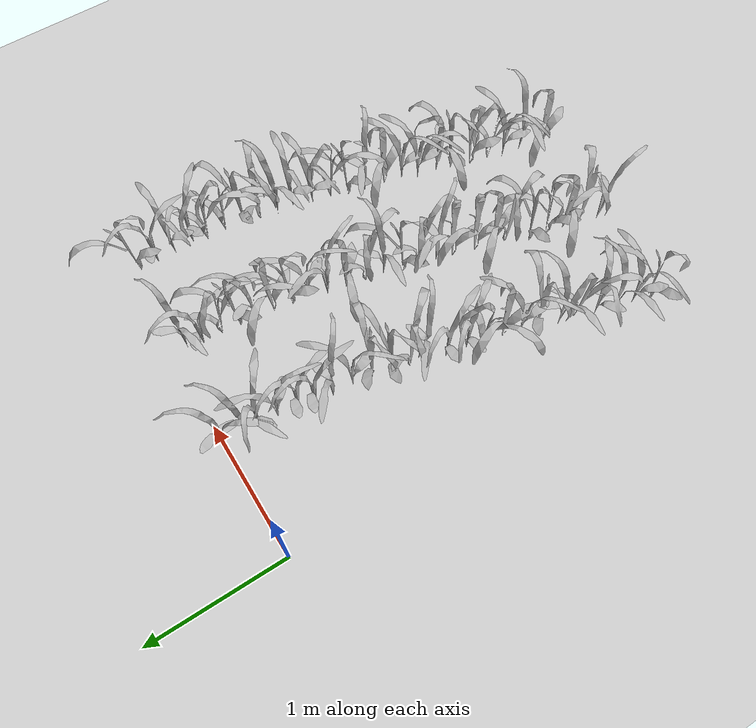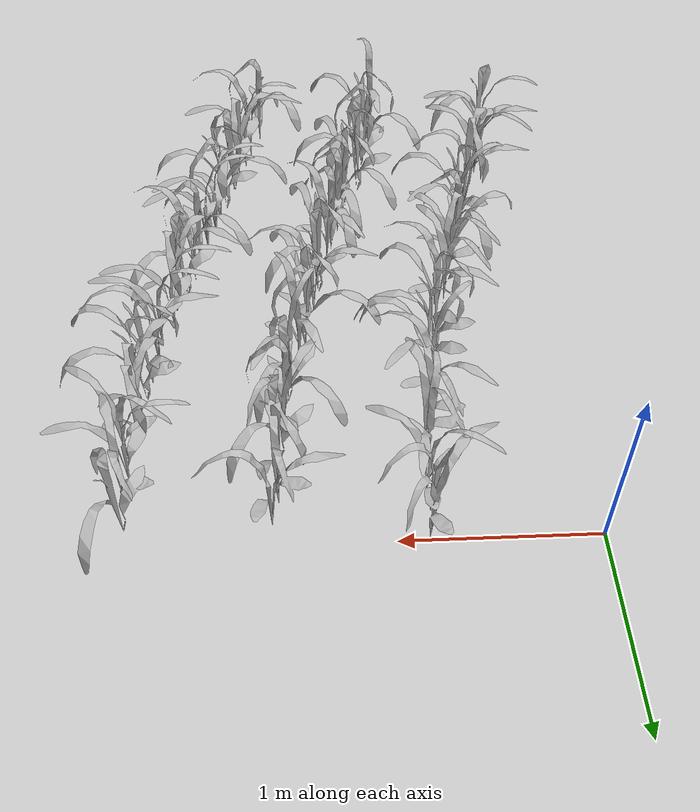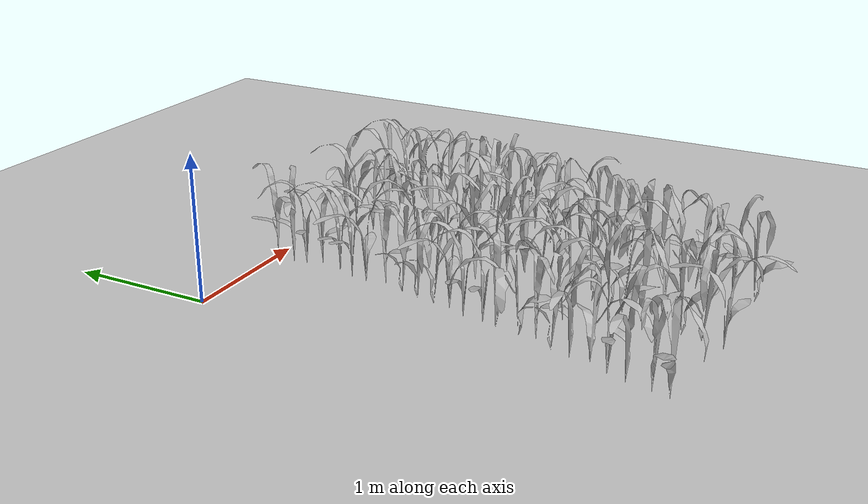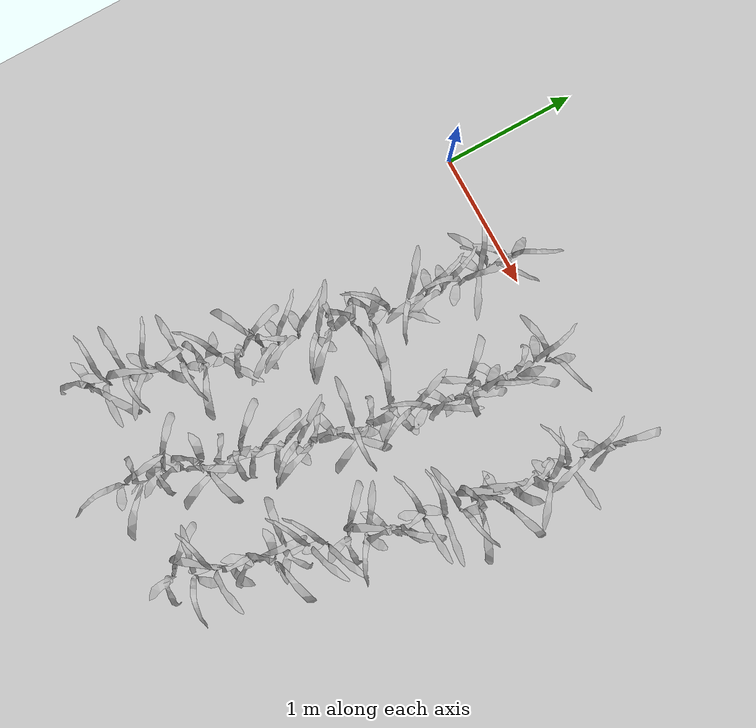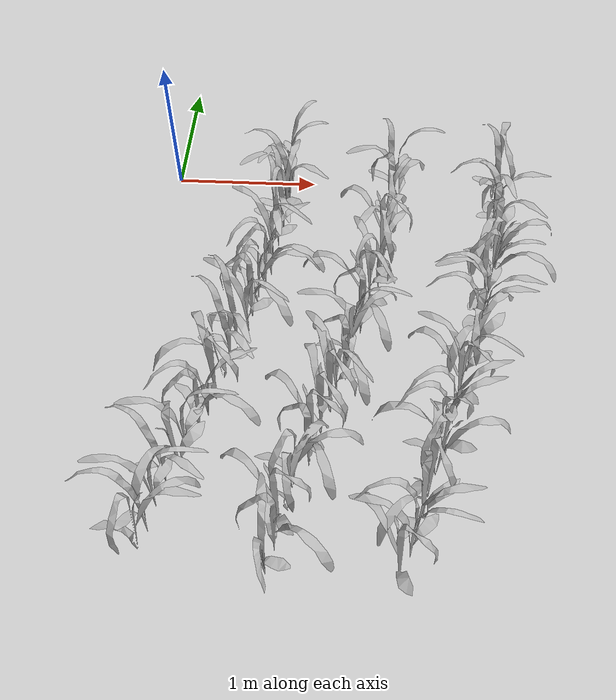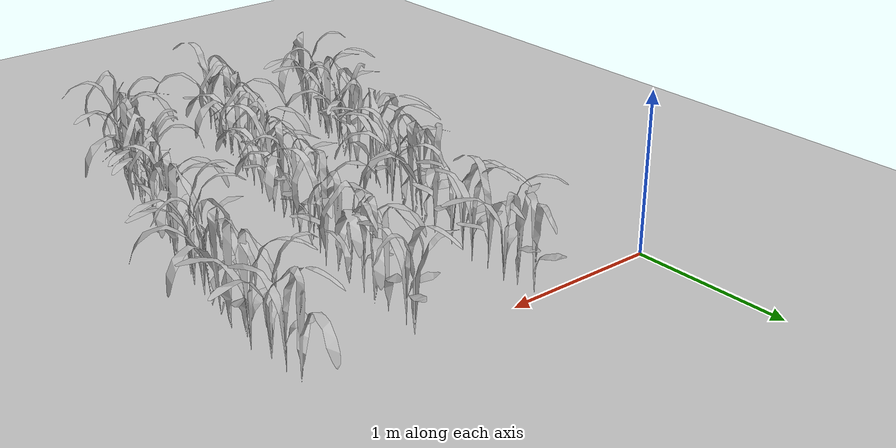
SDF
<sdf version="1.7">
 <world name="default">
  <model name="maize_01_0415">
   <pose>0.221696 -3.00469 1e-06 0.000116 2e-06 1.37368</pose>
   <link name="maize_01_link">
    <inertial>
     <pose>0 0 0.01 0 -0 0</pose>
     <mass>0.3</mass>
     <inertia>
      <ixx>0.00334167</ixx>
      <ixy>0</ixy>
      <ixz>0</ixz>
      <iyy>0.00334167</iyy>
      <iyz>0</iyz>
      <izz>1.66667e-05</izz>
     </inertia>
     <pose>0 0 0.1 0 -0 0</pose>
    </inertial>
    <visual name="visual">
     <geometry>
      <mesh><uri>model://maize_01/meshes/maize_01.dae</uri><scale>0.683166 0.683166 0.683166</scale></mesh>
     </geometry>
    </visual>
   </link>
   <static>0</static>
  </model>
  <model name="maize_02_0416">
   <pose>0.255041 -2.89124 -1e-06 6e-06 -8.9e-05 2.12749</pose>
   <link name="maize_02_link">
    <inertial>
     <pose>0 0 0.01 0 -0 0</pose>
     <mass>0.3</mass>
     <inertia>
      <ixx>0.00334167</ixx>
      <ixy>0</ixy>
      <ixz>0</ixz>
      <iyy>0.00334167</iyy>
      <iyz>0</iyz>
      <izz>1.66667e-05</izz>
     </inertia>
     <pose>0 0 0.1 0 -0 0</pose>
    </inertial>
    <visual name="visual">
     <geometry>
      <mesh><uri>model://maize_02/meshes/maize_02.dae</uri><scale>0.683166 0.683166 0.683166</scale></mesh>
     </geometry>
    </visual>
   </link>
   <static>0</static>
  </model>
  <model name="maize_02_0417">
   <pose>0.274082 -2.73259 -0 -5e-06 2.8e-05 -0.94294</pose>
   <link name="maize_02_link">
    <inertial>
     <pose>0 0 0.01 0 -0 0</pose>
     <mass>0.3</mass>
     <inertia>
      <ixx>0.00334167</ixx>
      <ixy>0</ixy>
      <ixz>0</ixz>
      <iyy>0.00334167</iyy>
      <iyz>0</iyz>
      <izz>1.66667e-05</izz>
     </inertia>
     <pose>0 0 0.1 0 -0 0</pose>
    </inertial>
    <visual name="visual">
     <geometry>
      <mesh><uri>model://maize_02/meshes/maize_02.dae</uri><scale>0.683166 0.683166 0.683166</scale></mesh>
     </geometry>
    </visual>
   </link>
   <static>0</static>
  </model>
  <model name="maize_02_0418">
   <pose>0.318698 -2.61053 -1e-06 -8.6e-05 -6e-06 1.57221</pose>
   <link name="maize_02_link">
    <inertial>
     <pose>0 0 0.01 0 -0 0</pose>
     <mass>0.3</mass>
     <inertia>
      <ixx>0.00334167</ixx>
      <ixy>0</ixy>
      <ixz>0</ixz>
      <iyy>0.00334167</iyy>
      <iyz>0</iyz>
      <izz>1.66667e-05</izz>
     </inertia>
     <pose>0 0 0.1 0 -0 0</pose>
    </inertial>
    <visual name="visual">
     <geometry>
      <mesh><uri>model://maize_02/meshes/maize_02.dae</uri><scale>0.683166 0.683166 0.683166</scale></mesh>
     </geometry>
    </visual>
   </link>
   <static>0</static>
  </model>
  <model name="maize_01_0419">
   <pose>0.381773 -2.484 1e-06 3e-06 0.000156 -1.14904</pose>
   <link name="maize_01_link">
    <inertial>
     <pose>0 0 0.01 0 -0 0</pose>
     <mass>0.3</mass>
     <inertia>
      <ixx>0.00334167</ixx>
      <ixy>0</ixy>
      <ixz>0</ixz>
      <iyy>0.00334167</iyy>
      <iyz>0</iyz>
      <izz>1.66667e-05</izz>
     </inertia>
     <pose>0 0 0.1 0 -0 0</pose>
    </inertial>
    <visual name="visual">
     <geometry>
      <mesh><uri>model://maize_01/meshes/maize_01.dae</uri><scale>0.683166 0.683166 0.683166</scale></mesh>
     </geometry>
    </visual>
   </link>
   <static>0</static>
  </model>
  <model name="maize_02_0420">
   <pose>0.393863 -2.35343 -0 -5e-06 -2.8e-05 -0.946602</pose>
   <link name="maize_02_link">
    <inertial>
     <pose>0 0 0.01 0 -0 0</pose>
     <mass>0.3</mass>
     <inertia>
      <ixx>0.00334167</ixx>
      <ixy>0</ixy>
      <ixz>0</ixz>
      <iyy>0.00334167</iyy>
      <iyz>0</iyz>
      <izz>1.66667e-05</izz>
     </inertia>
     <pose>0 0 0.1 0 -0 0</pose>
    </inertial>
    <visual name="visual">
     <geometry>
      <mesh><uri>model://maize_02/meshes/maize_02.dae</uri><scale>0.683166 0.683166 0.683166</scale></mesh>
     </geometry>
    </visual>
   </link>
   <static>0</static>
  </model>
  <model name="maize_01_0421">
   <pose>0.45538 -2.21931 -0 5e-06 2.8e-05 0.438065</pose>
   <link name="maize_01_link">
    <inertial>
     <pose>0 0 0.01 0 -0 0</pose>
     <mass>0.3</mass>
     <inertia>
      <ixx>0.00334167</ixx>
      <ixy>0</ixy>
      <ixz>0</ixz>
      <iyy>0.00334167</iyy>
      <iyz>0</iyz>
      <izz>1.66667e-05</izz>
     </inertia>
     <pose>0 0 0.1 0 -0 0</pose>
    </inertial>
    <visual name="visual">
     <geometry>
      <mesh><uri>model://maize_01/meshes/maize_01.dae</uri><scale>0.683166 0.683166 0.683166</scale></mesh>
     </geometry>
    </visual>
   </link>
   <static>0</static>
  </model>
  <model name="maize_02_0422">
   <pose>0.492206 -2.10585 -0 -2.8e-05 -5e-06 2.71184</pose>
   <link name="maize_02_link">
    <inertial>
     <pose>0 0 0.01 0 -0 0</pose>
     <mass>0.3</mass>
     <inertia>
      <ixx>0.00334167</ixx>
      <ixy>0</ixy>
      <ixz>0</ixz>
      <iyy>0.00334167</iyy>
      <iyz>0</iyz>
      <izz>1.66667e-05</izz>
     </inertia>
     <pose>0 0 0.1 0 -0 0</pose>
    </inertial>
    <visual name="visual">
     <geometry>
      <mesh><uri>model://maize_02/meshes/maize_02.dae</uri><scale>0.683166 0.683166 0.683166</scale></mesh>
     </geometry>
    </visual>
   </link>
   <static>0</static>
  </model>
  <model name="maize_01_0423">
   <pose>0.527457 -1.97814 1e-06 3e-06 -0.000156 2.74436</pose>
   <link name="maize_01_link">
    <inertial>
     <pose>0 0 0.01 0 -0 0</pose>
     <mass>0.3</mass>
     <inertia>
      <ixx>0.00334167</ixx>
      <ixy>0</ixy>
      <ixz>0</ixz>
      <iyy>0.00334167</iyy>
      <iyz>0</iyz>
      <izz>1.66667e-05</izz>
     </inertia>
     <pose>0 0 0.1 0 -0 0</pose>
    </inertial>
    <visual name="visual">
     <geometry>
      <mesh><uri>model://maize_01/meshes/maize_01.dae</uri><scale>0.683166 0.683166 0.683166</scale></mesh>
     </geometry>
    </visual>
   </link>
   <static>0</static>
  </model>
  <model name="maize_01_0424">
   <pose>0.546104 -1.8151 1e-06 -3e-06 -0.000156 -1.86587</pose>
   <link name="maize_01_link">
    <inertial>
     <pose>0 0 0.01 0 -0 0</pose>
     <mass>0.3</mass>
     <inertia>
      <ixx>0.00334167</ixx>
      <ixy>0</ixy>
      <ixz>0</ixz>
      <iyy>0.00334167</iyy>
      <iyz>0</iyz>
      <izz>1.66667e-05</izz>
     </inertia>
     <pose>0 0 0.1 0 -0 0</pose>
    </inertial>
    <visual name="visual">
     <geometry>
      <mesh><uri>model://maize_01/meshes/maize_01.dae</uri><scale>0.683166 0.683166 0.683166</scale></mesh>
     </geometry>
    </visual>
   </link>
   <static>0</static>
  </model>
  <model name="maize_02_0425">
   <pose>0.579997 -1.71609 -0 -2.8e-05 -5e-06 1.23075</pose>
   <link name="maize_02_link">
    <inertial>
     <pose>0 0 0.01 0 -0 0</pose>
     <mass>0.3</mass>
     <inertia>
      <ixx>0.00334167</ixx>
      <ixy>0</ixy>
      <ixz>0</ixz>
      <iyy>0.00334167</iyy>
      <iyz>0</iyz>
      <izz>1.66667e-05</izz>
     </inertia>
     <pose>0 0 0.1 0 -0 0</pose>
    </inertial>
    <visual name="visual">
     <geometry>
      <mesh><uri>model://maize_02/meshes/maize_02.dae</uri><scale>0.683166 0.683166 0.683166</scale></mesh>
     </geometry>
    </visual>
   </link>
   <static>0</static>
  </model>
  <model name="maize_02_0426">
   <pose>0.605497 -1.56964 -0 2.8e-05 -5e-06 1.04587</pose>
   <link name="maize_02_link">
    <inertial>
     <pose>0 0 0.01 0 -0 0</pose>
     <mass>0.3</mass>
     <inertia>
      <ixx>0.00334167</ixx>
      <ixy>0</ixy>
      <ixz>0</ixz>
      <iyy>0.00334167</iyy>
      <iyz>0</iyz>
      <izz>1.66667e-05</izz>
     </inertia>
     <pose>0 0 0.1 0 -0 0</pose>
    </inertial>
    <visual name="visual">
     <geometry>
      <mesh><uri>model://maize_02/meshes/maize_02.dae</uri><scale>0.683166 0.683166 0.683166</scale></mesh>
     </geometry>
    </visual>
   </link>
   <static>0</static>
  </model>
  <model name="maize_02_0427">
   <pose>0.667023 -1.44245 -1e-06 -8.3e-05 6e-06 -1.61009</pose>
   <link name="maize_02_link">
    <inertial>
     <pose>0 0 0.01 0 -0 0</pose>
     <mass>0.3</mass>
     <inertia>
      <ixx>0.00334167</ixx>
      <ixy>0</ixy>
      <ixz>0</ixz>
      <iyy>0.00334167</iyy>
      <iyz>0</iyz>
      <izz>1.66667e-05</izz>
     </inertia>
     <pose>0 0 0.1 0 -0 0</pose>
    </inertial>
    <visual name="visual">
     <geometry>
      <mesh><uri>model://maize_02/meshes/maize_02.dae</uri><scale>0.683166 0.683166 0.683166</scale></mesh>
     </geometry>
    </visual>
   </link>
   <static>0</static>
  </model>
  <model name="maize_01_0428">
   <pose>0.676519 -1.3275 -0 2.8e-05 5e-06 -0.012096</pose>
   <link name="maize_01_link">
    <inertial>
     <pose>0 0 0.01 0 -0 0</pose>
     <mass>0.3</mass>
     <inertia>
      <ixx>0.00334167</ixx>
      <ixy>0</ixy>
      <ixz>0</ixz>
      <iyy>0.00334167</iyy>
      <iyz>0</iyz>
      <izz>1.66667e-05</izz>
     </inertia>
     <pose>0 0 0.1 0 -0 0</pose>
    </inertial>
    <visual name="visual">
     <geometry>
      <mesh><uri>model://maize_01/meshes/maize_01.dae</uri><scale>0.683166 0.683166 0.683166</scale></mesh>
     </geometry>
    </visual>
   </link>
   <static>0</static>
  </model>
  <model name="maize_01_0429">
   <pose>0.703089 -1.19765 1e-06 -3e-06 0.000156 0.900305</pose>
   <link name="maize_01_link">
    <inertial>
     <pose>0 0 0.01 0 -0 0</pose>
     <mass>0.3</mass>
     <inertia>
      <ixx>0.00334167</ixx>
      <ixy>0</ixy>
      <ixz>0</ixz>
      <iyy>0.00334167</iyy>
      <iyz>0</iyz>
      <izz>1.66667e-05</izz>
     </inertia>
     <pose>0 0 0.1 0 -0 0</pose>
    </inertial>
    <visual name="visual">
     <geometry>
      <mesh><uri>model://maize_01/meshes/maize_01.dae</uri><scale>0.683166 0.683166 0.683166</scale></mesh>
     </geometry>
    </visual>
   </link>
   <static>0</static>
  </model>
  <model name="maize_01_0430">
   <pose>0.739331 -1.06498 1e-06 -3e-06 0.000156 0.541217</pose>
   <link name="maize_01_link">
    <inertial>
     <pose>0 0 0.01 0 -0 0</pose>
     <mass>0.3</mass>
     <inertia>
      <ixx>0.00334167</ixx>
      <ixy>0</ixy>
      <ixz>0</ixz>
      <iyy>0.00334167</iyy>
      <iyz>0</iyz>
      <izz>1.66667e-05</izz>
     </inertia>
     <pose>0 0 0.1 0 -0 0</pose>
    </inertial>
    <visual name="visual">
     <geometry>
      <mesh><uri>model://maize_01/meshes/maize_01.dae</uri><scale>0.683166 0.683166 0.683166</scale></mesh>
     </geometry>
    </visual>
   </link>
   <static>0</static>
  </model>
  <model name="maize_02_0431">
   <pose>0.765207 -0.926051 1e-06 0.000156 3e-06 2.942</pose>
   <link name="maize_02_link">
    <inertial>
     <pose>0 0 0.01 0 -0 0</pose>
     <mass>0.3</mass>
     <inertia>
      <ixx>0.00334167</ixx>
      <ixy>0</ixy>
      <ixz>0</ixz>
      <iyy>0.00334167</iyy>
      <iyz>0</iyz>
      <izz>1.66667e-05</izz>
     </inertia>
     <pose>0 0 0.1 0 -0 0</pose>
    </inertial>
    <visual name="visual">
     <geometry>
      <mesh><uri>model://maize_02/meshes/maize_02.dae</uri><scale>0.683166 0.683166 0.683166</scale></mesh>
     </geometry>
    </visual>
   </link>
   <static>0</static>
  </model>
  <model name="maize_02_0432">
   <pose>0.764271 -0.773912 -0 -2.8e-05 -5e-06 -1.63084</pose>
   <link name="maize_02_link">
    <inertial>
     <pose>0 0 0.01 0 -0 0</pose>
     <mass>0.3</mass>
     <inertia>
      <ixx>0.00334167</ixx>
      <ixy>0</ixy>
      <ixz>0</ixz>
      <iyy>0.00334167</iyy>
      <iyz>0</iyz>
      <izz>1.66667e-05</izz>
     </inertia>
     <pose>0 0 0.1 0 -0 0</pose>
    </inertial>
    <visual name="visual">
     <geometry>
      <mesh><uri>model://maize_02/meshes/maize_02.dae</uri><scale>0.683166 0.683166 0.683166</scale></mesh>
     </geometry>
    </visual>
   </link>
   <static>0</static>
  </model>
  <model name="maize_02_0433">
   <pose>0.789022 -0.651392 -0.000245 -1.4e-05 1.2e-05 0.79375</pose>
   <link name="maize_02_link">
    <inertial>
     <pose>0 0 0.01 0 -0 0</pose>
     <mass>0.3</mass>
     <inertia>
      <ixx>0.00334167</ixx>
      <ixy>0</ixy>
      <ixz>0</ixz>
      <iyy>0.00334167</iyy>
      <iyz>0</iyz>
      <izz>1.66667e-05</izz>
     </inertia>
     <pose>0 0 0.1 0 -0 0</pose>
    </inertial>
    <visual name="visual">
     <geometry>
      <mesh><uri>model://maize_02/meshes/maize_02.dae</uri><scale>0.683166 0.683166 0.683166</scale></mesh>
     </geometry>
    </visual>
   </link>
   <static>0</static>
  </model>
  <model name="maize_02_0434">
   <pose>0.816385 -0.541052 -0 -5e-06 -2.8e-05 0.861128</pose>
   <link name="maize_02_link">
    <inertial>
     <pose>0 0 0.01 0 -0 0</pose>
     <mass>0.3</mass>
     <inertia>
      <ixx>0.00334167</ixx>
      <ixy>0</ixy>
      <ixz>0</ixz>
      <iyy>0.00334167</iyy>
      <iyz>0</iyz>
      <izz>1.66667e-05</izz>
     </inertia>
     <pose>0 0 0.1 0 -0 0</pose>
    </inertial>
    <visual name="visual">
     <geometry>
      <mesh><uri>model://maize_02/meshes/maize_02.dae</uri><scale>0.683166 0.683166 0.683166</scale></mesh>
     </geometry>
    </visual>
   </link>
   <static>0</static>
  </model>
  <model name="maize_02_0435">
   <pose>0.831832 -0.392988 -1e-06 7.9e-05 -6e-06 -2.73247</pose>
   <link name="maize_02_link">
    <inertial>
     <pose>0 0 0.01 0 -0 0</pose>
     <mass>0.3</mass>
     <inertia>
      <ixx>0.00334167</ixx>
      <ixy>0</ixy>
      <ixz>0</ixz>
      <iyy>0.00334167</iyy>
      <iyz>0</iyz>
      <izz>1.66667e-05</izz>
     </inertia>
     <pose>0 0 0.1 0 -0 0</pose>
    </inertial>
    <visual name="visual">
     <geometry>
      <mesh><uri>model://maize_02/meshes/maize_02.dae</uri><scale>0.683166 0.683166 0.683166</scale></mesh>
     </geometry>
    </visual>
   </link>
   <static>0</static>
  </model>
  <model name="maize_02_0436">
   <pose>0.837868 -0.256862 -0 -5e-06 -2.8e-05 1.6064</pose>
   <link name="maize_02_link">
    <inertial>
     <pose>0 0 0.01 0 -0 0</pose>
     <mass>0.3</mass>
     <inertia>
      <ixx>0.00334167</ixx>
      <ixy>0</ixy>
      <ixz>0</ixz>
      <iyy>0.00334167</iyy>
      <iyz>0</iyz>
      <izz>1.66667e-05</izz>
     </inertia>
     <pose>0 0 0.1 0 -0 0</pose>
    </inertial>
    <visual name="visual">
     <geometry>
      <mesh><uri>model://maize_02/meshes/maize_02.dae</uri><scale>0.683166 0.683166 0.683166</scale></mesh>
     </geometry>
    </visual>
   </link>
   <static>0</static>
  </model>
  <model name="maize_02_0437">
   <pose>0.824915 -0.159453 -0 -5e-06 -2.8e-05 -0.445045</pose>
   <link name="maize_02_link">
    <inertial>
     <pose>0 0 0.01 0 -0 0</pose>
     <mass>0.3</mass>
     <inertia>
      <ixx>0.00334167</ixx>
      <ixy>0</ixy>
      <ixz>0</ixz>
      <iyy>0.00334167</iyy>
      <iyz>0</iyz>
      <izz>1.66667e-05</izz>
     </inertia>
     <pose>0 0 0.1 0 -0 0</pose>
    </inertial>
    <visual name="visual">
     <geometry>
      <mesh><uri>model://maize_02/meshes/maize_02.dae</uri><scale>0.683166 0.683166 0.683166</scale></mesh>
     </geometry>
    </visual>
   </link>
   <static>0</static>
  </model>
  <model name="maize_02_0438">
   <pose>0.840676 -0.015364 -0 2.8e-05 -5e-06 0.009874</pose>
   <link name="maize_02_link">
    <inertial>
     <pose>0 0 0.01 0 -0 0</pose>
     <mass>0.3</mass>
     <inertia>
      <ixx>0.00334167</ixx>
      <ixy>0</ixy>
      <ixz>0</ixz>
      <iyy>0.00334167</iyy>
      <iyz>0</iyz>
      <izz>1.66667e-05</izz>
     </inertia>
     <pose>0 0 0.1 0 -0 0</pose>
    </inertial>
    <visual name="visual">
     <geometry>
      <mesh><uri>model://maize_02/meshes/maize_02.dae</uri><scale>0.683166 0.683166 0.683166</scale></mesh>
     </geometry>
    </visual>
   </link>
   <static>0</static>
  </model>
  <model name="maize_02_0491">
   <pose>0.936088 -3.1158 -0.000245 -1.4e-05 1.2e-05 -2.44295</pose>
   <link name="maize_02_link">
    <inertial>
     <pose>0 0 0.01 0 -0 0</pose>
     <mass>0.3</mass>
     <inertia>
      <ixx>0.00334167</ixx>
      <ixy>0</ixy>
      <ixz>0</ixz>
      <iyy>0.00334167</iyy>
      <iyz>0</iyz>
      <izz>1.66667e-05</izz>
     </inertia>
     <pose>0 0 0.1 0 -0 0</pose>
    </inertial>
    <visual name="visual">
     <geometry>
      <mesh><uri>model://maize_02/meshes/maize_02.dae</uri><scale>0.683166 0.683166 0.683166</scale></mesh>
     </geometry>
    </visual>
   </link>
   <static>0</static>
  </model>
  <model name="maize_01_0492">
   <pose>0.972324 -2.97862 -0 -5e-06 2.8e-05 0.147275</pose>
   <link name="maize_01_link">
    <inertial>
     <pose>0 0 0.01 0 -0 0</pose>
     <mass>0.3</mass>
     <inertia>
      <ixx>0.00334167</ixx>
      <ixy>0</ixy>
      <ixz>0</ixz>
      <iyy>0.00334167</iyy>
      <iyz>0</iyz>
      <izz>1.66667e-05</izz>
     </inertia>
     <pose>0 0 0.1 0 -0 0</pose>
    </inertial>
    <visual name="visual">
     <geometry>
      <mesh><uri>model://maize_01/meshes/maize_01.dae</uri><scale>0.683166 0.683166 0.683166</scale></mesh>
     </geometry>
    </visual>
   </link>
   <static>0</static>
  </model>
  <model name="maize_01_0493">
   <pose>0.995451 -2.84144 -1e-06 -6e-06 8.9e-05 -3.02129</pose>
   <link name="maize_01_link">
    <inertial>
     <pose>0 0 0.01 0 -0 0</pose>
     <mass>0.3</mass>
     <inertia>
      <ixx>0.00334167</ixx>
      <ixy>0</ixy>
      <ixz>0</ixz>
      <iyy>0.00334167</iyy>
      <iyz>0</iyz>
      <izz>1.66667e-05</izz>
     </inertia>
     <pose>0 0 0.1 0 -0 0</pose>
    </inertial>
    <visual name="visual">
     <geometry>
      <mesh><uri>model://maize_01/meshes/maize_01.dae</uri><scale>0.683166 0.683166 0.683166</scale></mesh>
     </geometry>
    </visual>
   </link>
   <static>0</static>
  </model>
  <model name="maize_01_0494">
   <pose>1.02956 -2.72195 -0 2.8e-05 5e-06 1.84608</pose>
   <link name="maize_01_link">
    <inertial>
     <pose>0 0 0.01 0 -0 0</pose>
     <mass>0.3</mass>
     <inertia>
      <ixx>0.00334167</ixx>
      <ixy>0</ixy>
      <ixz>0</ixz>
      <iyy>0.00334167</iyy>
      <iyz>0</iyz>
      <izz>1.66667e-05</izz>
     </inertia>
     <pose>0 0 0.1 0 -0 0</pose>
    </inertial>
    <visual name="visual">
     <geometry>
      <mesh><uri>model://maize_01/meshes/maize_01.dae</uri><scale>0.683166 0.683166 0.683166</scale></mesh>
     </geometry>
    </visual>
   </link>
   <static>0</static>
  </model>
  <model name="maize_01_0495">
   <pose>1.04447 -2.5815 -0 -4.8e-05 6e-06 1.08324</pose>
   <link name="maize_01_link">
    <inertial>
     <pose>0 0 0.01 0 -0 0</pose>
     <mass>0.3</mass>
     <inertia>
      <ixx>0.00334167</ixx>
      <ixy>0</ixy>
      <ixz>0</ixz>
      <iyy>0.00334167</iyy>
      <iyz>0</iyz>
      <izz>1.66667e-05</izz>
     </inertia>
     <pose>0 0 0.1 0 -0 0</pose>
    </inertial>
    <visual name="visual">
     <geometry>
      <mesh><uri>model://maize_01/meshes/maize_01.dae</uri><scale>0.683166 0.683166 0.683166</scale></mesh>
     </geometry>
    </visual>
   </link>
   <static>0</static>
  </model>
  <model name="maize_01_0496">
   <pose>1.12473 -2.43127 -0 -5e-06 2.8e-05 -0.377675</pose>
   <link name="maize_01_link">
    <inertial>
     <pose>0 0 0.01 0 -0 0</pose>
     <mass>0.3</mass>
     <inertia>
      <ixx>0.00334167</ixx>
      <ixy>0</ixy>
      <ixz>0</ixz>
      <iyy>0.00334167</iyy>
      <iyz>0</iyz>
      <izz>1.66667e-05</izz>
     </inertia>
     <pose>0 0 0.1 0 -0 0</pose>
    </inertial>
    <visual name="visual">
     <geometry>
      <mesh><uri>model://maize_01/meshes/maize_01.dae</uri><scale>0.683166 0.683166 0.683166</scale></mesh>
     </geometry>
    </visual>
   </link>
   <static>0</static>
  </model>
  <model name="maize_01_0497">
   <pose>1.15179 -2.33424 -0 2.8e-05 -5e-06 3.12475</pose>
   <link name="maize_01_link">
    <inertial>
     <pose>0 0 0.01 0 -0 0</pose>
     <mass>0.3</mass>
     <inertia>
      <ixx>0.00334167</ixx>
      <ixy>0</ixy>
      <ixz>0</ixz>
      <iyy>0.00334167</iyy>
      <iyz>0</iyz>
      <izz>1.66667e-05</izz>
     </inertia>
     <pose>0 0 0.1 0 -0 0</pose>
    </inertial>
    <visual name="visual">
     <geometry>
      <mesh><uri>model://maize_01/meshes/maize_01.dae</uri><scale>0.683166 0.683166 0.683166</scale></mesh>
     </geometry>
    </visual>
   </link>
   <static>0</static>
  </model>
  <model name="maize_01_0498">
   <pose>1.18874 -2.20411 -0 -2.8e-05 5e-06 2.60848</pose>
   <link name="maize_01_link">
    <inertial>
     <pose>0 0 0.01 0 -0 0</pose>
     <mass>0.3</mass>
     <inertia>
      <ixx>0.00334167</ixx>
      <ixy>0</ixy>
      <ixz>0</ixz>
      <iyy>0.00334167</iyy>
      <iyz>0</iyz>
      <izz>1.66667e-05</izz>
     </inertia>
     <pose>0 0 0.1 0 -0 0</pose>
    </inertial>
    <visual name="visual">
     <geometry>
      <mesh><uri>model://maize_01/meshes/maize_01.dae</uri><scale>0.683166 0.683166 0.683166</scale></mesh>
     </geometry>
    </visual>
   </link>
   <static>0</static>
  </model>
  <model name="maize_01_0499">
   <pose>1.23487 -2.04291 -1e-06 -8.9e-05 -6e-06 2.62693</pose>
   <link name="maize_01_link">
    <inertial>
     <pose>0 0 0.01 0 -0 0</pose>
     <mass>0.3</mass>
     <inertia>
      <ixx>0.00334167</ixx>
      <ixy>0</ixy>
      <ixz>0</ixz>
      <iyy>0.00334167</iyy>
      <iyz>0</iyz>
      <izz>1.66667e-05</izz>
     </inertia>
     <pose>0 0 0.1 0 -0 0</pose>
    </inertial>
    <visual name="visual">
     <geometry>
      <mesh><uri>model://maize_01/meshes/maize_01.dae</uri><scale>0.683166 0.683166 0.683166</scale></mesh>
     </geometry>
    </visual>
   </link>
   <static>0</static>
  </model>
  <model name="maize_02_0500">
   <pose>1.26359 -1.92361 -0.000245 -1.4e-05 1.2e-05 -1.938</pose>
   <link name="maize_02_link">
    <inertial>
     <pose>0 0 0.01 0 -0 0</pose>
     <mass>0.3</mass>
     <inertia>
      <ixx>0.00334167</ixx>
      <ixy>0</ixy>
      <ixz>0</ixz>
      <iyy>0.00334167</iyy>
      <iyz>0</iyz>
      <izz>1.66667e-05</izz>
     </inertia>
     <pose>0 0 0.1 0 -0 0</pose>
    </inertial>
    <visual name="visual">
     <geometry>
      <mesh><uri>model://maize_02/meshes/maize_02.dae</uri><scale>0.683166 0.683166 0.683166</scale></mesh>
     </geometry>
    </visual>
   </link>
   <static>0</static>
  </model>
  <model name="maize_01_0501">
   <pose>1.30942 -1.80017 -0 5e-06 -2.8e-05 -0.433491</pose>
   <link name="maize_01_link">
    <inertial>
     <pose>0 0 0.01 0 -0 0</pose>
     <mass>0.3</mass>
     <inertia>
      <ixx>0.00334167</ixx>
      <ixy>0</ixy>
      <ixz>0</ixz>
      <iyy>0.00334167</iyy>
      <iyz>0</iyz>
      <izz>1.66667e-05</izz>
     </inertia>
     <pose>0 0 0.1 0 -0 0</pose>
    </inertial>
    <visual name="visual">
     <geometry>
      <mesh><uri>model://maize_01/meshes/maize_01.dae</uri><scale>0.683166 0.683166 0.683166</scale></mesh>
     </geometry>
    </visual>
   </link>
   <static>0</static>
  </model>
  <model name="maize_01_0502">
   <pose>1.32186 -1.68339 -1e-06 6e-06 -8.9e-05 1.58258</pose>
   <link name="maize_01_link">
    <inertial>
     <pose>0 0 0.01 0 -0 0</pose>
     <mass>0.3</mass>
     <inertia>
      <ixx>0.00334167</ixx>
      <ixy>0</ixy>
      <ixz>0</ixz>
      <iyy>0.00334167</iyy>
      <iyz>0</iyz>
      <izz>1.66667e-05</izz>
     </inertia>
     <pose>0 0 0.1 0 -0 0</pose>
    </inertial>
    <visual name="visual">
     <geometry>
      <mesh><uri>model://maize_01/meshes/maize_01.dae</uri><scale>0.683166 0.683166 0.683166</scale></mesh>
     </geometry>
    </visual>
   </link>
   <static>0</static>
  </model>
  <model name="maize_02_0503">
   <pose>1.35314 -1.53522 1e-06 0.000156 -3e-06 -1.09847</pose>
   <link name="maize_02_link">
    <inertial>
     <pose>0 0 0.01 0 -0 0</pose>
     <mass>0.3</mass>
     <inertia>
      <ixx>0.00334167</ixx>
      <ixy>0</ixy>
      <ixz>0</ixz>
      <iyy>0.00334167</iyy>
      <iyz>0</iyz>
      <izz>1.66667e-05</izz>
     </inertia>
     <pose>0 0 0.1 0 -0 0</pose>
    </inertial>
    <visual name="visual">
     <geometry>
      <mesh><uri>model://maize_02/meshes/maize_02.dae</uri><scale>0.683166 0.683166 0.683166</scale></mesh>
     </geometry>
    </visual>
   </link>
   <static>0</static>
  </model>
  <model name="maize_01_0504">
   <pose>1.39078 -1.41718 -0 5e-06 2.8e-05 -0.335486</pose>
   <link name="maize_01_link">
    <inertial>
     <pose>0 0 0.01 0 -0 0</pose>
     <mass>0.3</mass>
     <inertia>
      <ixx>0.00334167</ixx>
      <ixy>0</ixy>
      <ixz>0</ixz>
      <iyy>0.00334167</iyy>
      <iyz>0</iyz>
      <izz>1.66667e-05</izz>
     </inertia>
     <pose>0 0 0.1 0 -0 0</pose>
    </inertial>
    <visual name="visual">
     <geometry>
      <mesh><uri>model://maize_01/meshes/maize_01.dae</uri><scale>0.683166 0.683166 0.683166</scale></mesh>
     </geometry>
    </visual>
   </link>
   <static>0</static>
  </model>
  <model name="maize_01_0505">
   <pose>1.40701 -1.26437 -1e-06 -7.9e-05 -6e-06 -2.70025</pose>
   <link name="maize_01_link">
    <inertial>
     <pose>0 0 0.01 0 -0 0</pose>
     <mass>0.3</mass>
     <inertia>
      <ixx>0.00334167</ixx>
      <ixy>0</ixy>
      <ixz>0</ixz>
      <iyy>0.00334167</iyy>
      <iyz>0</iyz>
      <izz>1.66667e-05</izz>
     </inertia>
     <pose>0 0 0.1 0 -0 0</pose>
    </inertial>
    <visual name="visual">
     <geometry>
      <mesh><uri>model://maize_01/meshes/maize_01.dae</uri><scale>0.683166 0.683166 0.683166</scale></mesh>
     </geometry>
    </visual>
   </link>
   <static>0</static>
  </model>
  <model name="maize_02_0506">
   <pose>1.44683 -1.13478 -0 5e-06 2.8e-05 -2.18082</pose>
   <link name="maize_02_link">
    <inertial>
     <pose>0 0 0.01 0 -0 0</pose>
     <mass>0.3</mass>
     <inertia>
      <ixx>0.00334167</ixx>
      <ixy>0</ixy>
      <ixz>0</ixz>
      <iyy>0.00334167</iyy>
      <iyz>0</iyz>
      <izz>1.66667e-05</izz>
     </inertia>
     <pose>0 0 0.1 0 -0 0</pose>
    </inertial>
    <visual name="visual">
     <geometry>
      <mesh><uri>model://maize_02/meshes/maize_02.dae</uri><scale>0.683166 0.683166 0.683166</scale></mesh>
     </geometry>
    </visual>
   </link>
   <static>0</static>
  </model>
  <model name="maize_02_0507">
   <pose>1.49932 -1.01036 -0 -2.8e-05 -5e-06 -3.06085</pose>
   <link name="maize_02_link">
    <inertial>
     <pose>0 0 0.01 0 -0 0</pose>
     <mass>0.3</mass>
     <inertia>
      <ixx>0.00334167</ixx>
      <ixy>0</ixy>
      <ixz>0</ixz>
      <iyy>0.00334167</iyy>
      <iyz>0</iyz>
      <izz>1.66667e-05</izz>
     </inertia>
     <pose>0 0 0.1 0 -0 0</pose>
    </inertial>
    <visual name="visual">
     <geometry>
      <mesh><uri>model://maize_02/meshes/maize_02.dae</uri><scale>0.683166 0.683166 0.683166</scale></mesh>
     </geometry>
    </visual>
   </link>
   <static>0</static>
  </model>
  <model name="maize_01_0508">
   <pose>1.50701 -0.887125 -0 5e-06 -2.8e-05 1.99897</pose>
   <link name="maize_01_link">
    <inertial>
     <pose>0 0 0.01 0 -0 0</pose>
     <mass>0.3</mass>
     <inertia>
      <ixx>0.00334167</ixx>
      <ixy>0</ixy>
      <ixz>0</ixz>
      <iyy>0.00334167</iyy>
      <iyz>0</iyz>
      <izz>1.66667e-05</izz>
     </inertia>
     <pose>0 0 0.1 0 -0 0</pose>
    </inertial>
    <visual name="visual">
     <geometry>
      <mesh><uri>model://maize_01/meshes/maize_01.dae</uri><scale>0.683166 0.683166 0.683166</scale></mesh>
     </geometry>
    </visual>
   </link>
   <static>0</static>
  </model>
  <model name="maize_01_0509">
   <pose>1.52949 -0.750848 -1e-06 6e-06 -8.6e-05 -3.1257</pose>
   <link name="maize_01_link">
    <inertial>
     <pose>0 0 0.01 0 -0 0</pose>
     <mass>0.3</mass>
     <inertia>
      <ixx>0.00334167</ixx>
      <ixy>0</ixy>
      <ixz>0</ixz>
      <iyy>0.00334167</iyy>
      <iyz>0</iyz>
      <izz>1.66667e-05</izz>
     </inertia>
     <pose>0 0 0.1 0 -0 0</pose>
    </inertial>
    <visual name="visual">
     <geometry>
      <mesh><uri>model://maize_01/meshes/maize_01.dae</uri><scale>0.683166 0.683166 0.683166</scale></mesh>
     </geometry>
    </visual>
   </link>
   <static>0</static>
  </model>
  <model name="maize_02_0510">
   <pose>1.53759 -0.611757 -0 -6e-06 -4.8e-05 0.059657</pose>
   <link name="maize_02_link">
    <inertial>
     <pose>0 0 0.01 0 -0 0</pose>
     <mass>0.3</mass>
     <inertia>
      <ixx>0.00334167</ixx>
      <ixy>0</ixy>
      <ixz>0</ixz>
      <iyy>0.00334167</iyy>
      <iyz>0</iyz>
      <izz>1.66667e-05</izz>
     </inertia>
     <pose>0 0 0.1 0 -0 0</pose>
    </inertial>
    <visual name="visual">
     <geometry>
      <mesh><uri>model://maize_02/meshes/maize_02.dae</uri><scale>0.683166 0.683166 0.683166</scale></mesh>
     </geometry>
    </visual>
   </link>
   <static>0</static>
  </model>
  <model name="maize_01_0511">
   <pose>1.55639 -0.501879 -0.000245 -1.2e-05 -1.4e-05 1.77207</pose>
   <link name="maize_01_link">
    <inertial>
     <pose>0 0 0.01 0 -0 0</pose>
     <mass>0.3</mass>
     <inertia>
      <ixx>0.00334167</ixx>
      <ixy>0</ixy>
      <ixz>0</ixz>
      <iyy>0.00334167</iyy>
      <iyz>0</iyz>
      <izz>1.66667e-05</izz>
     </inertia>
     <pose>0 0 0.1 0 -0 0</pose>
    </inertial>
    <visual name="visual">
     <geometry>
      <mesh><uri>model://maize_01/meshes/maize_01.dae</uri><scale>0.683166 0.683166 0.683166</scale></mesh>
     </geometry>
    </visual>
   </link>
   <static>0</static>
  </model>
  <model name="maize_01_0512">
   <pose>1.56362 -0.367099 -0 -2.8e-05 5e-06 -0.736175</pose>
   <link name="maize_01_link">
    <inertial>
     <pose>0 0 0.01 0 -0 0</pose>
     <mass>0.3</mass>
     <inertia>
      <ixx>0.00334167</ixx>
      <ixy>0</ixy>
      <ixz>0</ixz>
      <iyy>0.00334167</iyy>
      <iyz>0</iyz>
      <izz>1.66667e-05</izz>
     </inertia>
     <pose>0 0 0.1 0 -0 0</pose>
    </inertial>
    <visual name="visual">
     <geometry>
      <mesh><uri>model://maize_01/meshes/maize_01.dae</uri><scale>0.683166 0.683166 0.683166</scale></mesh>
     </geometry>
    </visual>
   </link>
   <static>0</static>
  </model>
  <model name="maize_02_0513">
   <pose>1.56281 -0.22366 -0.000245 1.4e-05 -1.2e-05 0.737903</pose>
   <link name="maize_02_link">
    <inertial>
     <pose>0 0 0.01 0 -0 0</pose>
     <mass>0.3</mass>
     <inertia>
      <ixx>0.00334167</ixx>
      <ixy>0</ixy>
      <ixz>0</ixz>
      <iyy>0.00334167</iyy>
      <iyz>0</iyz>
      <izz>1.66667e-05</izz>
     </inertia>
     <pose>0 0 0.1 0 -0 0</pose>
    </inertial>
    <visual name="visual">
     <geometry>
      <mesh><uri>model://maize_02/meshes/maize_02.dae</uri><scale>0.683166 0.683166 0.683166</scale></mesh>
     </geometry>
    </visual>
   </link>
   <static>0</static>
  </model>
  <model name="maize_02_0514">
   <pose>1.59685 -0.115023 -1e-06 6e-06 7.9e-05 -0.782459</pose>
   <link name="maize_02_link">
    <inertial>
     <pose>0 0 0.01 0 -0 0</pose>
     <mass>0.3</mass>
     <inertia>
      <ixx>0.00334167</ixx>
      <ixy>0</ixy>
      <ixz>0</ixz>
      <iyy>0.00334167</iyy>
      <iyz>0</iyz>
      <izz>1.66667e-05</izz>
     </inertia>
     <pose>0 0 0.1 0 -0 0</pose>
    </inertial>
    <visual name="visual">
     <geometry>
      <mesh><uri>model://maize_02/meshes/maize_02.dae</uri><scale>0.683166 0.683166 0.683166</scale></mesh>
     </geometry>
    </visual>
   </link>
   <static>0</static>
  </model>
  <model name="maize_01_0567">
   <pose>1.6647 -3.12939 -0.000245 1.4e-05 1.2e-05 3.03383</pose>
   <link name="maize_01_link">
    <inertial>
     <pose>0 0 0.01 0 -0 0</pose>
     <mass>0.3</mass>
     <inertia>
      <ixx>0.00334167</ixx>
      <ixy>0</ixy>
      <ixz>0</ixz>
      <iyy>0.00334167</iyy>
      <iyz>0</iyz>
      <izz>1.66667e-05</izz>
     </inertia>
     <pose>0 0 0.1 0 -0 0</pose>
    </inertial>
    <visual name="visual">
     <geometry>
      <mesh><uri>model://maize_01/meshes/maize_01.dae</uri><scale>0.683166 0.683166 0.683166</scale></mesh>
     </geometry>
    </visual>
   </link>
   <static>0</static>
  </model>
  <model name="maize_02_0568">
   <pose>1.72072 -2.97444 -0 -2.8e-05 -5e-06 -1.22873</pose>
   <link name="maize_02_link">
    <inertial>
     <pose>0 0 0.01 0 -0 0</pose>
     <mass>0.3</mass>
     <inertia>
      <ixx>0.00334167</ixx>
      <ixy>0</ixy>
      <ixz>0</ixz>
      <iyy>0.00334167</iyy>
      <iyz>0</iyz>
      <izz>1.66667e-05</izz>
     </inertia>
     <pose>0 0 0.1 0 -0 0</pose>
    </inertial>
    <visual name="visual">
     <geometry>
      <mesh><uri>model://maize_02/meshes/maize_02.dae</uri><scale>0.683166 0.683166 0.683166</scale></mesh>
     </geometry>
    </visual>
   </link>
   <static>0</static>
  </model>
  <model name="maize_02_0569">
   <pose>1.75134 -2.8465 1e-06 0.000156 -3e-06 2.33798</pose>
   <link name="maize_02_link">
    <inertial>
     <pose>0 0 0.01 0 -0 0</pose>
     <mass>0.3</mass>
     <inertia>
      <ixx>0.00334167</ixx>
      <ixy>0</ixy>
      <ixz>0</ixz>
      <iyy>0.00334167</iyy>
      <iyz>0</iyz>
      <izz>1.66667e-05</izz>
     </inertia>
     <pose>0 0 0.1 0 -0 0</pose>
    </inertial>
    <visual name="visual">
     <geometry>
      <mesh><uri>model://maize_02/meshes/maize_02.dae</uri><scale>0.683166 0.683166 0.683166</scale></mesh>
     </geometry>
    </visual>
   </link>
   <static>0</static>
  </model>
  <model name="maize_01_0570">
   <pose>1.79433 -2.74261 1e-06 0.000156 -3e-06 -1.45411</pose>
   <link name="maize_01_link">
    <inertial>
     <pose>0 0 0.01 0 -0 0</pose>
     <mass>0.3</mass>
     <inertia>
      <ixx>0.00334167</ixx>
      <ixy>0</ixy>
      <ixz>0</ixz>
      <iyy>0.00334167</iyy>
      <iyz>0</iyz>
      <izz>1.66667e-05</izz>
     </inertia>
     <pose>0 0 0.1 0 -0 0</pose>
    </inertial>
    <visual name="visual">
     <geometry>
      <mesh><uri>model://maize_01/meshes/maize_01.dae</uri><scale>0.683166 0.683166 0.683166</scale></mesh>
     </geometry>
    </visual>
   </link>
   <static>0</static>
  </model>
  <model name="maize_01_0571">
   <pose>1.82439 -2.59939 1e-06 0.000156 3e-06 2.26396</pose>
   <link name="maize_01_link">
    <inertial>
     <pose>0 0 0.01 0 -0 0</pose>
     <mass>0.3</mass>
     <inertia>
      <ixx>0.00334167</ixx>
      <ixy>0</ixy>
      <ixz>0</ixz>
      <iyy>0.00334167</iyy>
      <iyz>0</iyz>
      <izz>1.66667e-05</izz>
     </inertia>
     <pose>0 0 0.1 0 -0 0</pose>
    </inertial>
    <visual name="visual">
     <geometry>
      <mesh><uri>model://maize_01/meshes/maize_01.dae</uri><scale>0.683166 0.683166 0.683166</scale></mesh>
     </geometry>
    </visual>
   </link>
   <static>0</static>
  </model>
  <model name="maize_01_0572">
   <pose>1.86848 -2.45285 1e-06 -0.000156 3e-06 1.04514</pose>
   <link name="maize_01_link">
    <inertial>
     <pose>0 0 0.01 0 -0 0</pose>
     <mass>0.3</mass>
     <inertia>
      <ixx>0.00334167</ixx>
      <ixy>0</ixy>
      <ixz>0</ixz>
      <iyy>0.00334167</iyy>
      <iyz>0</iyz>
      <izz>1.66667e-05</izz>
     </inertia>
     <pose>0 0 0.1 0 -0 0</pose>
    </inertial>
    <visual name="visual">
     <geometry>
      <mesh><uri>model://maize_01/meshes/maize_01.dae</uri><scale>0.683166 0.683166 0.683166</scale></mesh>
     </geometry>
    </visual>
   </link>
   <static>0</static>
  </model>
  <model name="maize_01_0573">
   <pose>1.90219 -2.34503 -0 -2.8e-05 -5e-06 -2.48805</pose>
   <link name="maize_01_link">
    <inertial>
     <pose>0 0 0.01 0 -0 0</pose>
     <mass>0.3</mass>
     <inertia>
      <ixx>0.00334167</ixx>
      <ixy>0</ixy>
      <ixz>0</ixz>
      <iyy>0.00334167</iyy>
      <iyz>0</iyz>
      <izz>1.66667e-05</izz>
     </inertia>
     <pose>0 0 0.1 0 -0 0</pose>
    </inertial>
    <visual name="visual">
     <geometry>
      <mesh><uri>model://maize_01/meshes/maize_01.dae</uri><scale>0.683166 0.683166 0.683166</scale></mesh>
     </geometry>
    </visual>
   </link>
   <static>0</static>
  </model>
  <model name="maize_02_0574">
   <pose>1.92582 -2.19796 -0 -2.8e-05 5e-06 2.56449</pose>
   <link name="maize_02_link">
    <inertial>
     <pose>0 0 0.01 0 -0 0</pose>
     <mass>0.3</mass>
     <inertia>
      <ixx>0.00334167</ixx>
      <ixy>0</ixy>
      <ixz>0</ixz>
      <iyy>0.00334167</iyy>
      <iyz>0</iyz>
      <izz>1.66667e-05</izz>
     </inertia>
     <pose>0 0 0.1 0 -0 0</pose>
    </inertial>
    <visual name="visual">
     <geometry>
      <mesh><uri>model://maize_02/meshes/maize_02.dae</uri><scale>0.683166 0.683166 0.683166</scale></mesh>
     </geometry>
    </visual>
   </link>
   <static>0</static>
  </model>
  <model name="maize_02_0575">
   <pose>1.97405 -2.08826 1e-06 3e-06 0.000156 2.59971</pose>
   <link name="maize_02_link">
    <inertial>
     <pose>0 0 0.01 0 -0 0</pose>
     <mass>0.3</mass>
     <inertia>
      <ixx>0.00334167</ixx>
      <ixy>0</ixy>
      <ixz>0</ixz>
      <iyy>0.00334167</iyy>
      <iyz>0</iyz>
      <izz>1.66667e-05</izz>
     </inertia>
     <pose>0 0 0.1 0 -0 0</pose>
    </inertial>
    <visual name="visual">
     <geometry>
      <mesh><uri>model://maize_02/meshes/maize_02.dae</uri><scale>0.683166 0.683166 0.683166</scale></mesh>
     </geometry>
    </visual>
   </link>
   <static>0</static>
  </model>
  <model name="maize_01_0576">
   <pose>2.01325 -1.95604 -1e-06 -8.9e-05 -6e-06 -3.07274</pose>
   <link name="maize_01_link">
    <inertial>
     <pose>0 0 0.01 0 -0 0</pose>
     <mass>0.3</mass>
     <inertia>
      <ixx>0.00334167</ixx>
      <ixy>0</ixy>
      <ixz>0</ixz>
      <iyy>0.00334167</iyy>
      <iyz>0</iyz>
      <izz>1.66667e-05</izz>
     </inertia>
     <pose>0 0 0.1 0 -0 0</pose>
    </inertial>
    <visual name="visual">
     <geometry>
      <mesh><uri>model://maize_01/meshes/maize_01.dae</uri><scale>0.683166 0.683166 0.683166</scale></mesh>
     </geometry>
    </visual>
   </link>
   <static>0</static>
  </model>
  <model name="maize_02_0577">
   <pose>2.03619 -1.80634 -1e-06 6e-06 7.9e-05 -1.55481</pose>
   <link name="maize_02_link">
    <inertial>
     <pose>0 0 0.01 0 -0 0</pose>
     <mass>0.3</mass>
     <inertia>
      <ixx>0.00334167</ixx>
      <ixy>0</ixy>
      <ixz>0</ixz>
      <iyy>0.00334167</iyy>
      <iyz>0</iyz>
      <izz>1.66667e-05</izz>
     </inertia>
     <pose>0 0 0.1 0 -0 0</pose>
    </inertial>
    <visual name="visual">
     <geometry>
      <mesh><uri>model://maize_02/meshes/maize_02.dae</uri><scale>0.683166 0.683166 0.683166</scale></mesh>
     </geometry>
    </visual>
   </link>
   <static>0</static>
  </model>
  <model name="maize_01_0578">
   <pose>2.07764 -1.68584 -0 -2.8e-05 -5e-06 1.69552</pose>
   <link name="maize_01_link">
    <inertial>
     <pose>0 0 0.01 0 -0 0</pose>
     <mass>0.3</mass>
     <inertia>
      <ixx>0.00334167</ixx>
      <ixy>0</ixy>
      <ixz>0</ixz>
      <iyy>0.00334167</iyy>
      <iyz>0</iyz>
      <izz>1.66667e-05</izz>
     </inertia>
     <pose>0 0 0.1 0 -0 0</pose>
    </inertial>
    <visual name="visual">
     <geometry>
      <mesh><uri>model://maize_01/meshes/maize_01.dae</uri><scale>0.683166 0.683166 0.683166</scale></mesh>
     </geometry>
    </visual>
   </link>
   <static>0</static>
  </model>
  <model name="maize_01_0579">
   <pose>2.12959 -1.56633 -1e-06 6e-06 -8.3e-05 -1.28831</pose>
   <link name="maize_01_link">
    <inertial>
     <pose>0 0 0.01 0 -0 0</pose>
     <mass>0.3</mass>
     <inertia>
      <ixx>0.00334167</ixx>
      <ixy>0</ixy>
      <ixz>0</ixz>
      <iyy>0.00334167</iyy>
      <iyz>0</iyz>
      <izz>1.66667e-05</izz>
     </inertia>
     <pose>0 0 0.1 0 -0 0</pose>
    </inertial>
    <visual name="visual">
     <geometry>
      <mesh><uri>model://maize_01/meshes/maize_01.dae</uri><scale>0.683166 0.683166 0.683166</scale></mesh>
     </geometry>
    </visual>
   </link>
   <static>0</static>
  </model>
  <model name="maize_02_0580">
   <pose>2.13503 -1.4206 -1e-06 6e-06 8.9e-05 2.22597</pose>
   <link name="maize_02_link">
    <inertial>
     <pose>0 0 0.01 0 -0 0</pose>
     <mass>0.3</mass>
     <inertia>
      <ixx>0.00334167</ixx>
      <ixy>0</ixy>
      <ixz>0</ixz>
      <iyy>0.00334167</iyy>
      <iyz>0</iyz>
      <izz>1.66667e-05</izz>
     </inertia>
     <pose>0 0 0.1 0 -0 0</pose>
    </inertial>
    <visual name="visual">
     <geometry>
      <mesh><uri>model://maize_02/meshes/maize_02.dae</uri><scale>0.683166 0.683166 0.683166</scale></mesh>
     </geometry>
    </visual>
   </link>
   <static>0</static>
  </model>
  <model name="maize_02_0581">
   <pose>2.19383 -1.28661 -0 -5e-06 2.8e-05 2.01632</pose>
   <link name="maize_02_link">
    <inertial>
     <pose>0 0 0.01 0 -0 0</pose>
     <mass>0.3</mass>
     <inertia>
      <ixx>0.00334167</ixx>
      <ixy>0</ixy>
      <ixz>0</ixz>
      <iyy>0.00334167</iyy>
      <iyz>0</iyz>
      <izz>1.66667e-05</izz>
     </inertia>
     <pose>0 0 0.1 0 -0 0</pose>
    </inertial>
    <visual name="visual">
     <geometry>
      <mesh><uri>model://maize_02/meshes/maize_02.dae</uri><scale>0.683166 0.683166 0.683166</scale></mesh>
     </geometry>
    </visual>
   </link>
   <static>0</static>
  </model>
  <model name="maize_02_0582">
   <pose>2.20475 -1.1625 -0 5e-06 -2.8e-05 -0.80286</pose>
   <link name="maize_02_link">
    <inertial>
     <pose>0 0 0.01 0 -0 0</pose>
     <mass>0.3</mass>
     <inertia>
      <ixx>0.00334167</ixx>
      <ixy>0</ixy>
      <ixz>0</ixz>
      <iyy>0.00334167</iyy>
      <iyz>0</iyz>
      <izz>1.66667e-05</izz>
     </inertia>
     <pose>0 0 0.1 0 -0 0</pose>
    </inertial>
    <visual name="visual">
     <geometry>
      <mesh><uri>model://maize_02/meshes/maize_02.dae</uri><scale>0.683166 0.683166 0.683166</scale></mesh>
     </geometry>
    </visual>
   </link>
   <static>0</static>
  </model>
  <model name="maize_01_0583">
   <pose>2.23575 -1.03753 -0.000245 -1.2e-05 -1.4e-05 0.430152</pose>
   <link name="maize_01_link">
    <inertial>
     <pose>0 0 0.01 0 -0 0</pose>
     <mass>0.3</mass>
     <inertia>
      <ixx>0.00334167</ixx>
      <ixy>0</ixy>
      <ixz>0</ixz>
      <iyy>0.00334167</iyy>
      <iyz>0</iyz>
      <izz>1.66667e-05</izz>
     </inertia>
     <pose>0 0 0.1 0 -0 0</pose>
    </inertial>
    <visual name="visual">
     <geometry>
      <mesh><uri>model://maize_01/meshes/maize_01.dae</uri><scale>0.683166 0.683166 0.683166</scale></mesh>
     </geometry>
    </visual>
   </link>
   <static>0</static>
  </model>
  <model name="maize_01_0584">
   <pose>2.25681 -0.918899 -1e-06 -6e-06 -8.3e-05 1.16509</pose>
   <link name="maize_01_link">
    <inertial>
     <pose>0 0 0.01 0 -0 0</pose>
     <mass>0.3</mass>
     <inertia>
      <ixx>0.00334167</ixx>
      <ixy>0</ixy>
      <ixz>0</ixz>
      <iyy>0.00334167</iyy>
      <iyz>0</iyz>
      <izz>1.66667e-05</izz>
     </inertia>
     <pose>0 0 0.1 0 -0 0</pose>
    </inertial>
    <visual name="visual">
     <geometry>
      <mesh><uri>model://maize_01/meshes/maize_01.dae</uri><scale>0.683166 0.683166 0.683166</scale></mesh>
     </geometry>
    </visual>
   </link>
   <static>0</static>
  </model>
  <model name="maize_01_0585">
   <pose>2.2833 -0.772297 -0.000245 1.4e-05 1.2e-05 -1.25564</pose>
   <link name="maize_01_link">
    <inertial>
     <pose>0 0 0.01 0 -0 0</pose>
     <mass>0.3</mass>
     <inertia>
      <ixx>0.00334167</ixx>
      <ixy>0</ixy>
      <ixz>0</ixz>
      <iyy>0.00334167</iyy>
      <iyz>0</iyz>
      <izz>1.66667e-05</izz>
     </inertia>
     <pose>0 0 0.1 0 -0 0</pose>
    </inertial>
    <visual name="visual">
     <geometry>
      <mesh><uri>model://maize_01/meshes/maize_01.dae</uri><scale>0.683166 0.683166 0.683166</scale></mesh>
     </geometry>
    </visual>
   </link>
   <static>0</static>
  </model>
  <model name="maize_01_0586">
   <pose>2.27893 -0.629328 -0 -6e-06 -4.8e-05 -1.09181</pose>
   <link name="maize_01_link">
    <inertial>
     <pose>0 0 0.01 0 -0 0</pose>
     <mass>0.3</mass>
     <inertia>
      <ixx>0.00334167</ixx>
      <ixy>0</ixy>
      <ixz>0</ixz>
      <iyy>0.00334167</iyy>
      <iyz>0</iyz>
      <izz>1.66667e-05</izz>
     </inertia>
     <pose>0 0 0.1 0 -0 0</pose>
    </inertial>
    <visual name="visual">
     <geometry>
      <mesh><uri>model://maize_01/meshes/maize_01.dae</uri><scale>0.683166 0.683166 0.683166</scale></mesh>
     </geometry>
    </visual>
   </link>
   <static>0</static>
  </model>
  <model name="maize_02_0587">
   <pose>2.32566 -0.529656 -0.000245 1.2e-05 -1.4e-05 1.47753</pose>
   <link name="maize_02_link">
    <inertial>
     <pose>0 0 0.01 0 -0 0</pose>
     <mass>0.3</mass>
     <inertia>
      <ixx>0.00334167</ixx>
      <ixy>0</ixy>
      <ixz>0</ixz>
      <iyy>0.00334167</iyy>
      <iyz>0</iyz>
      <izz>1.66667e-05</izz>
     </inertia>
     <pose>0 0 0.1 0 -0 0</pose>
    </inertial>
    <visual name="visual">
     <geometry>
      <mesh><uri>model://maize_02/meshes/maize_02.dae</uri><scale>0.683166 0.683166 0.683166</scale></mesh>
     </geometry>
    </visual>
   </link>
   <static>0</static>
  </model>
  <model name="maize_02_0588">
   <pose>2.3033 -0.380383 1e-06 0.000156 3e-06 2.25521</pose>
   <link name="maize_02_link">
    <inertial>
     <pose>0 0 0.01 0 -0 0</pose>
     <mass>0.3</mass>
     <inertia>
      <ixx>0.00334167</ixx>
      <ixy>0</ixy>
      <ixz>0</ixz>
      <iyy>0.00334167</iyy>
      <iyz>0</iyz>
      <izz>1.66667e-05</izz>
     </inertia>
     <pose>0 0 0.1 0 -0 0</pose>
    </inertial>
    <visual name="visual">
     <geometry>
      <mesh><uri>model://maize_02/meshes/maize_02.dae</uri><scale>0.683166 0.683166 0.683166</scale></mesh>
     </geometry>
    </visual>
   </link>
   <static>0</static>
  </model>
  <model name="maize_02_0589">
   <pose>2.30882 -0.243381 -0 -5e-06 2.8e-05 0.877244</pose>
   <link name="maize_02_link">
    <inertial>
     <pose>0 0 0.01 0 -0 0</pose>
     <mass>0.3</mass>
     <inertia>
      <ixx>0.00334167</ixx>
      <ixy>0</ixy>
      <ixz>0</ixz>
      <iyy>0.00334167</iyy>
      <iyz>0</iyz>
      <izz>1.66667e-05</izz>
     </inertia>
     <pose>0 0 0.1 0 -0 0</pose>
    </inertial>
    <visual name="visual">
     <geometry>
      <mesh><uri>model://maize_02/meshes/maize_02.dae</uri><scale>0.683166 0.683166 0.683166</scale></mesh>
     </geometry>
    </visual>
   </link>
   <static>0</static>
  </model>
  <model name="maize_01_0590">
   <pose>2.3152 -0.109488 -0 -5e-06 2.8e-05 2.15368</pose>
   <link name="maize_01_link">
    <inertial>
     <pose>0 0 0.01 0 -0 0</pose>
     <mass>0.3</mass>
     <inertia>
      <ixx>0.00334167</ixx>
      <ixy>0</ixy>
      <ixz>0</ixz>
      <iyy>0.00334167</iyy>
      <iyz>0</iyz>
      <izz>1.66667e-05</izz>
     </inertia>
     <pose>0 0 0.1 0 -0 0</pose>
    </inertial>
    <visual name="visual">
     <geometry>
      <mesh><uri>model://maize_01/meshes/maize_01.dae</uri><scale>0.683166 0.683166 0.683166</scale></mesh>
     </geometry>
    </visual>
   </link>
   <static>0</static>
  </model>
  <model name="ground_plane">
   <static>1</static>
   <link name="link">
    <collision name="collision">
     <geometry><plane><normal>0 0 1</normal><size>100 100</size></plane></geometry>
     <surface>
      <contact><collide_bitmask>65535</collide_bitmask></contact>
      <friction><ode><mu>100</mu><mu2>50</mu2></ode></friction>
     </surface>
    </collision>
    <visual name="visual">
     <cast_shadows>0</cast_shadows>
     <geometry><plane><normal>0 0 1</normal><size>100 100</size></plane></geometry>
     <material>
      <script><uri>file://media/materials/scripts/gazebo.material</uri><name>Gazebo/Grey</name></script>
     </material>
    </visual>
   </link>
   <pose>-13.7732 9.25996 0 0 -0 0</pose>
  </model>
 </world>
</sdf>
